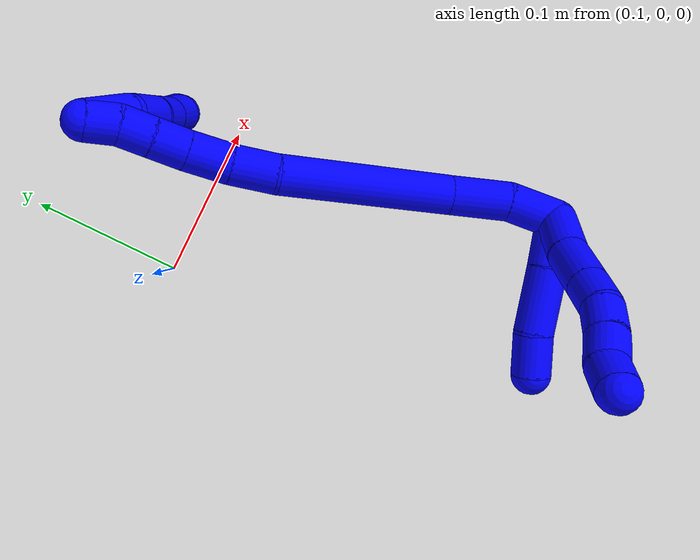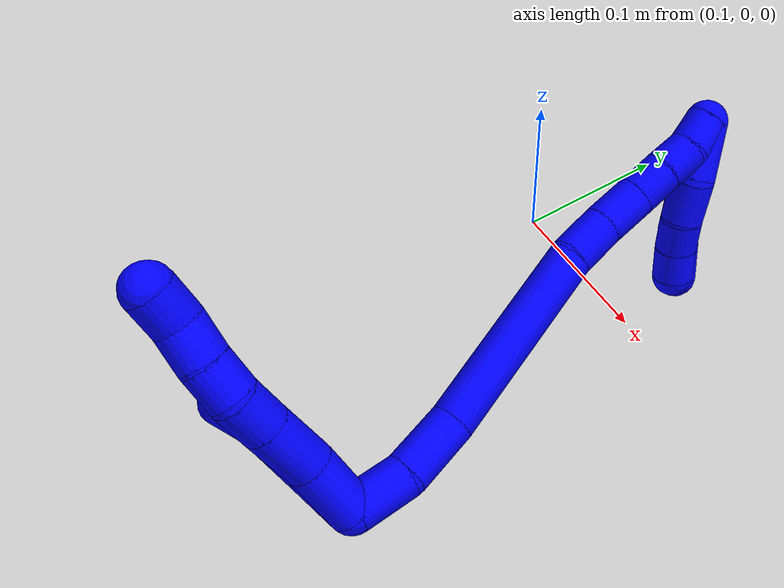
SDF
<sdf version="1.7">
 <world name="default">
  <model name="1">
   <static>0</static>
   <link name="1">
    <collision name="collision-cylinder-e_1_2_8">
     <pose>-0.012067 -0.006849 0.010627 0.572489 -0.762076 -0.234741</pose>
     <geometry><cylinder><radius>0.0125</radius><length>0.034955</length></cylinder></geometry>
     <surface>
      <friction><ode><mu>1.16</mu><mu2>1.16</mu2><slip1>0</slip1><slip2>0</slip2></ode></friction>
      <contact><ode><kp>1e+06</kp><kd>1</kd><max_vel>0</max_vel><min_depth>0.001</min_depth></ode></contact>
     </surface>
    </collision>
    <visual name="visual-cylinder-e_1_2_8">
     <pose>-0.012067 -0.006849 0.010627 0.572489 -0.762076 -0.234741</pose>
     <geometry><cylinder><radius>0.0125</radius><length>0.034955</length></cylinder></geometry>
     <material><ambient>0 0 1 1</ambient></material>
    </visual>
    <collision name="collision-cylinder-e_2_8_9">
     <pose>-0.033477 -0.021014 0.032367 0.582264 -0.612246 -0.188848</pose>
     <geometry><cylinder><radius>0.0125</radius><length>0.032513</length></cylinder></geometry>
     <surface>
      <friction><ode><mu>1.16</mu><mu2>1.16</mu2><slip1>0</slip1><slip2>0</slip2></ode></friction>
      <contact><ode><kp>1e+06</kp><kd>1</kd><max_vel>0</max_vel><min_depth>0.001</min_depth></ode></contact>
     </surface>
    </collision>
    <visual name="visual-cylinder-e_2_8_9">
     <pose>-0.033477 -0.021014 0.032367 0.582264 -0.612246 -0.188848</pose>
     <geometry><cylinder><radius>0.0125</radius><length>0.032513</length></cylinder></geometry>
     <material><ambient>0 0 1 1</ambient></material>
    </visual>
    <collision name="collision-cylinder-e_3_9_10">
     <pose>-0.049163 -0.03306 0.051085 0.556306 -0.616165 -0.181238</pose>
     <geometry><cylinder><radius>0.0125</radius><length>0.021951</length></cylinder></geometry>
     <surface>
      <friction><ode><mu>1.16</mu><mu2>1.16</mu2><slip1>0</slip1><slip2>0</slip2></ode></friction>
      <contact><ode><kp>1e+06</kp><kd>1</kd><max_vel>0</max_vel><min_depth>0.001</min_depth></ode></contact>
     </surface>
    </collision>
    <visual name="visual-cylinder-e_3_9_10">
     <pose>-0.049163 -0.03306 0.051085 0.556306 -0.616165 -0.181238</pose>
     <geometry><cylinder><radius>0.0125</radius><length>0.021951</length></cylinder></geometry>
     <material><ambient>0 0 1 1</ambient></material>
    </visual>
    <collision name="collision-cylinder-e_4_10_11">
     <pose>-0.063449 -0.041495 0.063756 0.631516 -0.902206 -0.313903</pose>
     <geometry><cylinder><radius>0.0125</radius><length>0.020245</length></cylinder></geometry>
     <surface>
      <friction><ode><mu>1.16</mu><mu2>1.16</mu2><slip1>0</slip1><slip2>0</slip2></ode></friction>
      <contact><ode><kp>1e+06</kp><kd>1</kd><max_vel>0</max_vel><min_depth>0.001</min_depth></ode></contact>
     </surface>
    </collision>
    <visual name="visual-cylinder-e_4_10_11">
     <pose>-0.063449 -0.041495 0.063756 0.631516 -0.902206 -0.313903</pose>
     <geometry><cylinder><radius>0.0125</radius><length>0.020245</length></cylinder></geometry>
     <material><ambient>0 0 1 1</ambient></material>
    </visual>
    <collision name="collision-cylinder-e_5_11_12">
     <pose>-0.080077 -0.047979 0.073311 0.554362 -1.02445 -0.317255</pose>
     <geometry><cylinder><radius>0.0125</radius><length>0.02033</length></cylinder></geometry>
     <surface>
      <friction><ode><mu>1.16</mu><mu2>1.16</mu2><slip1>0</slip1><slip2>0</slip2></ode></friction>
      <contact><ode><kp>1e+06</kp><kd>1</kd><max_vel>0</max_vel><min_depth>0.001</min_depth></ode></contact>
     </surface>
    </collision>
    <visual name="visual-cylinder-e_5_11_12">
     <pose>-0.080077 -0.047979 0.073311 0.554362 -1.02445 -0.317255</pose>
     <geometry><cylinder><radius>0.0125</radius><length>0.02033</length></cylinder></geometry>
     <material><ambient>0 0 1 1</ambient></material>
    </visual>
    <collision name="collision-cylinder-e_6_12_6">
     <pose>-0.095123 -0.054307 0.084657 0.477583 -0.68924 -0.174317</pose>
     <geometry><cylinder><radius>0.0125</radius><length>0.020005</length></cylinder></geometry>
     <surface>
      <friction><ode><mu>1.16</mu><mu2>1.16</mu2><slip1>0</slip1><slip2>0</slip2></ode></friction>
      <contact><ode><kp>1e+06</kp><kd>1</kd><max_vel>0</max_vel><min_depth>0.001</min_depth></ode></contact>
     </surface>
    </collision>
    <visual name="visual-cylinder-e_6_12_6">
     <pose>-0.095123 -0.054307 0.084657 0.477583 -0.68924 -0.174317</pose>
     <geometry><cylinder><radius>0.0125</radius><length>0.020005</length></cylinder></geometry>
     <material><ambient>0 0 1 1</ambient></material>
    </visual>
    <collision name="collision-cylinder-e_1_2_13">
     <pose>-0.013412 -0.006708 -0.003646 2.06865 -1.05326 -1.54827</pose>
     <geometry><cylinder><radius>0.0125</radius><length>0.030866</length></cylinder></geometry>
     <surface>
      <friction><ode><mu>1.16</mu><mu2>1.16</mu2><slip1>0</slip1><slip2>0</slip2></ode></friction>
      <contact><ode><kp>1e+06</kp><kd>1</kd><max_vel>0</max_vel><min_depth>0.001</min_depth></ode></contact>
     </surface>
    </collision>
    <visual name="visual-cylinder-e_1_2_13">
     <pose>-0.013412 -0.006708 -0.003646 2.06865 -1.05326 -1.54827</pose>
     <geometry><cylinder><radius>0.0125</radius><length>0.030866</length></cylinder></geometry>
     <material><ambient>0 0 1 1</ambient></material>
    </visual>
    <collision name="collision-cylinder-e_2_13_14">
     <pose>-0.044731 -0.022327 -0.014019 2.21746 -1.01335 -1.67891</pose>
     <geometry><cylinder><radius>0.0125</radius><length>0.042205</length></cylinder></geometry>
     <surface>
      <friction><ode><mu>1.16</mu><mu2>1.16</mu2><slip1>0</slip1><slip2>0</slip2></ode></friction>
      <contact><ode><kp>1e+06</kp><kd>1</kd><max_vel>0</max_vel><min_depth>0.001</min_depth></ode></contact>
     </surface>
    </collision>
    <visual name="visual-cylinder-e_2_13_14">
     <pose>-0.044731 -0.022327 -0.014019 2.21746 -1.01335 -1.67891</pose>
     <geometry><cylinder><radius>0.0125</radius><length>0.042205</length></cylinder></geometry>
     <material><ambient>0 0 1 1</ambient></material>
    </visual>
    <collision name="collision-cylinder-e_3_14_5">
     <pose>-0.072602 -0.038753 -0.025797 2.16255 -0.833028 -1.38598</pose>
     <geometry><cylinder><radius>0.0125</radius><length>0.02693</length></cylinder></geometry>
     <surface>
      <friction><ode><mu>1.16</mu><mu2>1.16</mu2><slip1>0</slip1><slip2>0</slip2></ode></friction>
      <contact><ode><kp>1e+06</kp><kd>1</kd><max_vel>0</max_vel><min_depth>0.001</min_depth></ode></contact>
     </surface>
    </collision>
    <visual name="visual-cylinder-e_3_14_5">
     <pose>-0.072602 -0.038753 -0.025797 2.16255 -0.833028 -1.38598</pose>
     <geometry><cylinder><radius>0.0125</radius><length>0.02693</length></cylinder></geometry>
     <material><ambient>0 0 1 1</ambient></material>
    </visual>
    <collision name="collision-cylinder-e_1_2_15">
     <pose>-0.00413 0.015208 -0.001024 -1.63801 -0.264618 0.282792</pose>
     <geometry><cylinder><radius>0.0125</radius><length>0.031584</length></cylinder></geometry>
     <surface>
      <friction><ode><mu>1.16</mu><mu2>1.16</mu2><slip1>0</slip1><slip2>0</slip2></ode></friction>
      <contact><ode><kp>1e+06</kp><kd>1</kd><max_vel>0</max_vel><min_depth>0.001</min_depth></ode></contact>
     </surface>
    </collision>
    <visual name="visual-cylinder-e_1_2_15">
     <pose>-0.00413 0.015208 -0.001024 -1.63801 -0.264618 0.282792</pose>
     <geometry><cylinder><radius>0.0125</radius><length>0.031584</length></cylinder></geometry>
     <material><ambient>0 0 1 1</ambient></material>
    </visual>
    <collision name="collision-cylinder-e_2_15_16">
     <pose>-0.017665 0.046784 -0.003788 -1.67671 -0.519076 0.574191</pose>
     <geometry><cylinder><radius>0.0125</radius><length>0.037915</length></cylinder></geometry>
     <surface>
      <friction><ode><mu>1.16</mu><mu2>1.16</mu2><slip1>0</slip1><slip2>0</slip2></ode></friction>
      <contact><ode><kp>1e+06</kp><kd>1</kd><max_vel>0</max_vel><min_depth>0.001</min_depth></ode></contact>
     </surface>
    </collision>
    <visual name="visual-cylinder-e_2_15_16">
     <pose>-0.017665 0.046784 -0.003788 -1.67671 -0.519076 0.574191</pose>
     <geometry><cylinder><radius>0.0125</radius><length>0.037915</length></cylinder></geometry>
     <material><ambient>0 0 1 1</ambient></material>
    </visual>
    <collision name="collision-cylinder-e_3_16_17">
     <pose>-0.05838 0.108894 0.003374 -1.37859 -0.591622 0.492143</pose>
     <geometry><cylinder><radius>0.0125</radius><length>0.112283</length></cylinder></geometry>
     <surface>
      <friction><ode><mu>1.16</mu><mu2>1.16</mu2><slip1>0</slip1><slip2>0</slip2></ode></friction>
      <contact><ode><kp>1e+06</kp><kd>1</kd><max_vel>0</max_vel><min_depth>0.001</min_depth></ode></contact>
     </surface>
    </collision>
    <visual name="visual-cylinder-e_3_16_17">
     <pose>-0.05838 0.108894 0.003374 -1.37859 -0.591622 0.492143</pose>
     <geometry><cylinder><radius>0.0125</radius><length>0.112283</length></cylinder></geometry>
     <material><ambient>0 0 1 1</ambient></material>
    </visual>
    <collision name="collision-cylinder-e_4_17_18">
     <pose>-0.095954 0.167148 0.012985 -1.51421 -0.463438 0.438762</pose>
     <geometry><cylinder><radius>0.0125</radius><length>0.028021</length></cylinder></geometry>
     <surface>
      <friction><ode><mu>1.16</mu><mu2>1.16</mu2><slip1>0</slip1><slip2>0</slip2></ode></friction>
      <contact><ode><kp>1e+06</kp><kd>1</kd><max_vel>0</max_vel><min_depth>0.001</min_depth></ode></contact>
     </surface>
    </collision>
    <visual name="visual-cylinder-e_4_17_18">
     <pose>-0.095954 0.167148 0.012985 -1.51421 -0.463438 0.438762</pose>
     <geometry><cylinder><radius>0.0125</radius><length>0.028021</length></cylinder></geometry>
     <material><ambient>0 0 1 1</ambient></material>
    </visual>
    <collision name="collision-cylinder-e_5_18_19">
     <pose>-0.10743 0.192203 0.015452 -1.43152 -0.3905 0.340624</pose>
     <geometry><cylinder><radius>0.0125</radius><length>0.027391</length></cylinder></geometry>
     <surface>
      <friction><ode><mu>1.16</mu><mu2>1.16</mu2><slip1>0</slip1><slip2>0</slip2></ode></friction>
      <contact><ode><kp>1e+06</kp><kd>1</kd><max_vel>0</max_vel><min_depth>0.001</min_depth></ode></contact>
     </surface>
    </collision>
    <visual name="visual-cylinder-e_5_18_19">
     <pose>-0.10743 0.192203 0.015452 -1.43152 -0.3905 0.340624</pose>
     <geometry><cylinder><radius>0.0125</radius><length>0.027391</length></cylinder></geometry>
     <material><ambient>0 0 1 1</ambient></material>
    </visual>
    <collision name="collision-cylinder-e_6_19_20">
     <pose>-0.116617 0.214586 0.02013 -1.28235 -0.36929 0.277018</pose>
     <geometry><cylinder><radius>0.0125</radius><length>0.022016</length></cylinder></geometry>
     <surface>
      <friction><ode><mu>1.16</mu><mu2>1.16</mu2><slip1>0</slip1><slip2>0</slip2></ode></friction>
      <contact><ode><kp>1e+06</kp><kd>1</kd><max_vel>0</max_vel><min_depth>0.001</min_depth></ode></contact>
     </surface>
    </collision>
    <visual name="visual-cylinder-e_6_19_20">
     <pose>-0.116617 0.214586 0.02013 -1.28235 -0.36929 0.277018</pose>
     <geometry><cylinder><radius>0.0125</radius><length>0.022016</length></cylinder></geometry>
     <material><ambient>0 0 1 1</ambient></material>
    </visual>
    <collision name="collision-cylinder-e_7_20_21">
     <pose>-0.124104 0.233652 0.025215 -1.34028 -0.355178 0.282574</pose>
     <geometry><cylinder><radius>0.0125</radius><length>0.020211</length></cylinder></geometry>
     <surface>
      <friction><ode><mu>1.16</mu><mu2>1.16</mu2><slip1>0</slip1><slip2>0</slip2></ode></friction>
      <contact><ode><kp>1e+06</kp><kd>1</kd><max_vel>0</max_vel><min_depth>0.001</min_depth></ode></contact>
     </surface>
    </collision>
    <visual name="visual-cylinder-e_7_20_21">
     <pose>-0.124104 0.233652 0.025215 -1.34028 -0.355178 0.282574</pose>
     <geometry><cylinder><radius>0.0125</radius><length>0.020211</length></cylinder></geometry>
     <material><ambient>0 0 1 1</ambient></material>
    </visual>
    <collision name="collision-cylinder-e_8_21_1">
     <pose>-0.133563 0.25095 0.029692 -1.29195 -0.616009 0.470768</pose>
     <geometry><cylinder><radius>0.0125</radius><length>0.020578</length></cylinder></geometry>
     <surface>
      <friction><ode><mu>1.16</mu><mu2>1.16</mu2><slip1>0</slip1><slip2>0</slip2></ode></friction>
      <contact><ode><kp>1e+06</kp><kd>1</kd><max_vel>0</max_vel><min_depth>0.001</min_depth></ode></contact>
     </surface>
    </collision>
    <visual name="visual-cylinder-e_8_21_1">
     <pose>-0.133563 0.25095 0.029692 -1.29195 -0.616009 0.470768</pose>
     <geometry><cylinder><radius>0.0125</radius><length>0.020578</length></cylinder></geometry>
     <material><ambient>0 0 1 1</ambient></material>
    </visual>
    <collision name="collision-cylinder-e_1_1_22">
     <pose>-0.12681 0.252319 0.022609 2.52177 0.833103 1.88858</pose>
     <geometry><cylinder><radius>0.0125</radius><length>0.034318</length></cylinder></geometry>
     <surface>
      <friction><ode><mu>1.16</mu><mu2>1.16</mu2><slip1>0</slip1><slip2>0</slip2></ode></friction>
      <contact><ode><kp>1e+06</kp><kd>1</kd><max_vel>0</max_vel><min_depth>0.001</min_depth></ode></contact>
     </surface>
    </collision>
    <visual name="visual-cylinder-e_1_1_22">
     <pose>-0.12681 0.252319 0.022609 2.52177 0.833103 1.88858</pose>
     <geometry><cylinder><radius>0.0125</radius><length>0.034318</length></cylinder></geometry>
     <material><ambient>0 0 1 1</ambient></material>
    </visual>
    <collision name="collision-cylinder-e_2_22_23">
     <pose>-0.106965 0.242149 0.0032 2.80839 0.593319 2.13573</pose>
     <geometry><cylinder><radius>0.0125</radius><length>0.025565</length></cylinder></geometry>
     <surface>
      <friction><ode><mu>1.16</mu><mu2>1.16</mu2><slip1>0</slip1><slip2>0</slip2></ode></friction>
      <contact><ode><kp>1e+06</kp><kd>1</kd><max_vel>0</max_vel><min_depth>0.001</min_depth></ode></contact>
     </surface>
    </collision>
    <visual name="visual-cylinder-e_2_22_23">
     <pose>-0.106965 0.242149 0.0032 2.80839 0.593319 2.13573</pose>
     <geometry><cylinder><radius>0.0125</radius><length>0.025565</length></cylinder></geometry>
     <material><ambient>0 0 1 1</ambient></material>
    </visual>
    <collision name="collision-cylinder-e_3_23_24">
     <pose>-0.094678 0.237516 -0.015355 3.00578 0.537715 2.65758</pose>
     <geometry><cylinder><radius>0.0125</radius><length>0.02007</length></cylinder></geometry>
     <surface>
      <friction><ode><mu>1.16</mu><mu2>1.16</mu2><slip1>0</slip1><slip2>0</slip2></ode></friction>
      <contact><ode><kp>1e+06</kp><kd>1</kd><max_vel>0</max_vel><min_depth>0.001</min_depth></ode></contact>
     </surface>
    </collision>
    <visual name="visual-cylinder-e_3_23_24">
     <pose>-0.094678 0.237516 -0.015355 3.00578 0.537715 2.65758</pose>
     <geometry><cylinder><radius>0.0125</radius><length>0.02007</length></cylinder></geometry>
     <material><ambient>0 0 1 1</ambient></material>
    </visual>
    <collision name="collision-cylinder-e_4_24_4">
     <pose>-0.083641 0.235598 -0.031964 3.04879 0.629055 2.85804</pose>
     <geometry><cylinder><radius>0.0125</radius><length>0.020047</length></cylinder></geometry>
     <surface>
      <friction><ode><mu>1.16</mu><mu2>1.16</mu2><slip1>0</slip1><slip2>0</slip2></ode></friction>
      <contact><ode><kp>1e+06</kp><kd>1</kd><max_vel>0</max_vel><min_depth>0.001</min_depth></ode></contact>
     </surface>
    </collision>
    <visual name="visual-cylinder-e_4_24_4">
     <pose>-0.083641 0.235598 -0.031964 3.04879 0.629055 2.85804</pose>
     <geometry><cylinder><radius>0.0125</radius><length>0.020047</length></cylinder></geometry>
     <material><ambient>0 0 1 1</ambient></material>
    </visual>
    <collision name="collision-cylinder-e_1_1_25">
     <pose>-0.125191 0.25284 0.013561 2.81807 0.634522 2.21914</pose>
     <geometry><cylinder><radius>0.0125</radius><length>0.048304</length></cylinder></geometry>
     <surface>
      <friction><ode><mu>1.16</mu><mu2>1.16</mu2><slip1>0</slip1><slip2>0</slip2></ode></friction>
      <contact><ode><kp>1e+06</kp><kd>1</kd><max_vel>0</max_vel><min_depth>0.001</min_depth></ode></contact>
     </surface>
    </collision>
    <visual name="visual-cylinder-e_1_1_25">
     <pose>-0.125191 0.25284 0.013561 2.81807 0.634522 2.21914</pose>
     <geometry><cylinder><radius>0.0125</radius><length>0.048304</length></cylinder></geometry>
     <material><ambient>0 0 1 1</ambient></material>
    </visual>
    <collision name="collision-cylinder-e_2_25_26">
     <pose>-0.10493 0.244182 -0.01258 2.83061 0.633796 2.24982</pose>
     <geometry><cylinder><radius>0.0125</radius><length>0.020074</length></cylinder></geometry>
     <surface>
      <friction><ode><mu>1.16</mu><mu2>1.16</mu2><slip1>0</slip1><slip2>0</slip2></ode></friction>
      <contact><ode><kp>1e+06</kp><kd>1</kd><max_vel>0</max_vel><min_depth>0.001</min_depth></ode></contact>
     </surface>
    </collision>
    <visual name="visual-cylinder-e_2_25_26">
     <pose>-0.10493 0.244182 -0.01258 2.83061 0.633796 2.24982</pose>
     <geometry><cylinder><radius>0.0125</radius><length>0.020074</length></cylinder></geometry>
     <material><ambient>0 0 1 1</ambient></material>
    </visual>
    <collision name="collision-cylinder-e_3_26_3">
     <pose>-0.088257 0.239746 -0.031727 2.97194 0.745801 2.71355</pose>
     <geometry><cylinder><radius>0.0125</radius><length>0.031622</length></cylinder></geometry>
     <surface>
      <friction><ode><mu>1.16</mu><mu2>1.16</mu2><slip1>0</slip1><slip2>0</slip2></ode></friction>
      <contact><ode><kp>1e+06</kp><kd>1</kd><max_vel>0</max_vel><min_depth>0.001</min_depth></ode></contact>
     </surface>
    </collision>
    <visual name="visual-cylinder-e_3_26_3">
     <pose>-0.088257 0.239746 -0.031727 2.97194 0.745801 2.71355</pose>
     <geometry><cylinder><radius>0.0125</radius><length>0.031622</length></cylinder></geometry>
     <material><ambient>0 0 1 1</ambient></material>
    </visual>
    <collision name="collision-sphere-3">
     <pose>-0.077528 0.237785 -0.043174 0 -0 0</pose>
     <geometry><sphere><radius>0.0125</radius></sphere></geometry>
     <surface>
      <friction><ode><mu>1.16</mu><mu2>1.16</mu2><slip1>0</slip1><slip2>0</slip2></ode></friction>
      <contact><ode><kp>1e+06</kp><kd>1</kd><max_vel>0</max_vel><min_depth>0.001</min_depth></ode></contact>
     </surface>
    </collision>
    <visual name="visual-sphere-3">
     <pose>-0.077528 0.237785 -0.043174 0 -0 0</pose>
     <geometry><sphere><radius>0.0125</radius></sphere></geometry>
     <material><ambient>0 0 1 1</ambient></material>
    </visual>
    <collision name="collision-sphere-26">
     <pose>-0.098986 0.241707 -0.02028 0 -0 0</pose>
     <geometry><sphere><radius>0.0125</radius></sphere></geometry>
     <surface>
      <friction><ode><mu>1.16</mu><mu2>1.16</mu2><slip1>0</slip1><slip2>0</slip2></ode></friction>
      <contact><ode><kp>1e+06</kp><kd>1</kd><max_vel>0</max_vel><min_depth>0.001</min_depth></ode></contact>
     </surface>
    </collision>
    <visual name="visual-sphere-26">
     <pose>-0.098986 0.241707 -0.02028 0 -0 0</pose>
     <geometry><sphere><radius>0.0125</radius></sphere></geometry>
     <material><ambient>0 0 1 1</ambient></material>
    </visual>
    <collision name="collision-sphere-25">
     <pose>-0.110874 0.246656 -0.00488 0 -0 0</pose>
     <geometry><sphere><radius>0.0125</radius></sphere></geometry>
     <surface>
      <friction><ode><mu>1.16</mu><mu2>1.16</mu2><slip1>0</slip1><slip2>0</slip2></ode></friction>
      <contact><ode><kp>1e+06</kp><kd>1</kd><max_vel>0</max_vel><min_depth>0.001</min_depth></ode></contact>
     </surface>
    </collision>
    <visual name="visual-sphere-25">
     <pose>-0.110874 0.246656 -0.00488 0 -0 0</pose>
     <geometry><sphere><radius>0.0125</radius></sphere></geometry>
     <material><ambient>0 0 1 1</ambient></material>
    </visual>
    <collision name="collision-sphere-4">
     <pose>-0.077744 0.234847 -0.040034 0 -0 0</pose>
     <geometry><sphere><radius>0.0125</radius></sphere></geometry>
     <surface>
      <friction><ode><mu>1.16</mu><mu2>1.16</mu2><slip1>0</slip1><slip2>0</slip2></ode></friction>
      <contact><ode><kp>1e+06</kp><kd>1</kd><max_vel>0</max_vel><min_depth>0.001</min_depth></ode></contact>
     </surface>
    </collision>
    <visual name="visual-sphere-4">
     <pose>-0.077744 0.234847 -0.040034 0 -0 0</pose>
     <geometry><sphere><radius>0.0125</radius></sphere></geometry>
     <material><ambient>0 0 1 1</ambient></material>
    </visual>
    <collision name="collision-sphere-24">
     <pose>-0.089539 0.236349 -0.023894 0 -0 0</pose>
     <geometry><sphere><radius>0.0125</radius></sphere></geometry>
     <surface>
      <friction><ode><mu>1.16</mu><mu2>1.16</mu2><slip1>0</slip1><slip2>0</slip2></ode></friction>
      <contact><ode><kp>1e+06</kp><kd>1</kd><max_vel>0</max_vel><min_depth>0.001</min_depth></ode></contact>
     </surface>
    </collision>
    <visual name="visual-sphere-24">
     <pose>-0.089539 0.236349 -0.023894 0 -0 0</pose>
     <geometry><sphere><radius>0.0125</radius></sphere></geometry>
     <material><ambient>0 0 1 1</ambient></material>
    </visual>
    <collision name="collision-sphere-23">
     <pose>-0.099818 0.238683 -0.006815 0 -0 0</pose>
     <geometry><sphere><radius>0.0125</radius></sphere></geometry>
     <surface>
      <friction><ode><mu>1.16</mu><mu2>1.16</mu2><slip1>0</slip1><slip2>0</slip2></ode></friction>
      <contact><ode><kp>1e+06</kp><kd>1</kd><max_vel>0</max_vel><min_depth>0.001</min_depth></ode></contact>
     </surface>
    </collision>
    <visual name="visual-sphere-23">
     <pose>-0.099818 0.238683 -0.006815 0 -0 0</pose>
     <geometry><sphere><radius>0.0125</radius></sphere></geometry>
     <material><ambient>0 0 1 1</ambient></material>
    </visual>
    <collision name="collision-sphere-22">
     <pose>-0.114112 0.245615 0.013215 0 -0 0</pose>
     <geometry><sphere><radius>0.0125</radius></sphere></geometry>
     <surface>
      <friction><ode><mu>1.16</mu><mu2>1.16</mu2><slip1>0</slip1><slip2>0</slip2></ode></friction>
      <contact><ode><kp>1e+06</kp><kd>1</kd><max_vel>0</max_vel><min_depth>0.001</min_depth></ode></contact>
     </surface>
    </collision>
    <visual name="visual-sphere-22">
     <pose>-0.114112 0.245615 0.013215 0 -0 0</pose>
     <geometry><sphere><radius>0.0125</radius></sphere></geometry>
     <material><ambient>0 0 1 1</ambient></material>
    </visual>
    <collision name="collision-sphere-1">
     <pose>-0.139508 0.259023 0.032003 0 -0 0</pose>
     <geometry><sphere><radius>0.0125</radius></sphere></geometry>
     <surface>
      <friction><ode><mu>1.16</mu><mu2>1.16</mu2><slip1>0</slip1><slip2>0</slip2></ode></friction>
      <contact><ode><kp>1e+06</kp><kd>1</kd><max_vel>0</max_vel><min_depth>0.001</min_depth></ode></contact>
     </surface>
    </collision>
    <visual name="visual-sphere-1">
     <pose>-0.139508 0.259023 0.032003 0 -0 0</pose>
     <geometry><sphere><radius>0.0125</radius></sphere></geometry>
     <material><ambient>0 0 1 1</ambient></material>
    </visual>
    <collision name="collision-sphere-21">
     <pose>-0.127618 0.242876 0.02738 0 -0 0</pose>
     <geometry><sphere><radius>0.0125</radius></sphere></geometry>
     <surface>
      <friction><ode><mu>1.16</mu><mu2>1.16</mu2><slip1>0</slip1><slip2>0</slip2></ode></friction>
      <contact><ode><kp>1e+06</kp><kd>1</kd><max_vel>0</max_vel><min_depth>0.001</min_depth></ode></contact>
     </surface>
    </collision>
    <visual name="visual-sphere-21">
     <pose>-0.127618 0.242876 0.02738 0 -0 0</pose>
     <geometry><sphere><radius>0.0125</radius></sphere></geometry>
     <material><ambient>0 0 1 1</ambient></material>
    </visual>
    <collision name="collision-sphere-12">
     <pose>-0.088762 -0.05076 0.077802 0 -0 0</pose>
     <geometry><sphere><radius>0.0125</radius></sphere></geometry>
     <surface>
      <friction><ode><mu>1.16</mu><mu2>1.16</mu2><slip1>0</slip1><slip2>0</slip2></ode></friction>
      <contact><ode><kp>1e+06</kp><kd>1</kd><max_vel>0</max_vel><min_depth>0.001</min_depth></ode></contact>
     </surface>
    </collision>
    <visual name="visual-sphere-12">
     <pose>-0.088762 -0.05076 0.077802 0 -0 0</pose>
     <geometry><sphere><radius>0.0125</radius></sphere></geometry>
     <material><ambient>0 0 1 1</ambient></material>
    </visual>
    <collision name="collision-sphere-11">
     <pose>-0.071392 -0.045199 0.06882 0 -0 0</pose>
     <geometry><sphere><radius>0.0125</radius></sphere></geometry>
     <surface>
      <friction><ode><mu>1.16</mu><mu2>1.16</mu2><slip1>0</slip1><slip2>0</slip2></ode></friction>
      <contact><ode><kp>1e+06</kp><kd>1</kd><max_vel>0</max_vel><min_depth>0.001</min_depth></ode></contact>
     </surface>
    </collision>
    <visual name="visual-sphere-11">
     <pose>-0.071392 -0.045199 0.06882 0 -0 0</pose>
     <geometry><sphere><radius>0.0125</radius></sphere></geometry>
     <material><ambient>0 0 1 1</ambient></material>
    </visual>
    <collision name="collision-sphere-10">
     <pose>-0.055505 -0.03779 0.058691 0 -0 0</pose>
     <geometry><sphere><radius>0.0125</radius></sphere></geometry>
     <surface>
      <friction><ode><mu>1.16</mu><mu2>1.16</mu2><slip1>0</slip1><slip2>0</slip2></ode></friction>
      <contact><ode><kp>1e+06</kp><kd>1</kd><max_vel>0</max_vel><min_depth>0.001</min_depth></ode></contact>
     </surface>
    </collision>
    <visual name="visual-sphere-10">
     <pose>-0.055505 -0.03779 0.058691 0 -0 0</pose>
     <geometry><sphere><radius>0.0125</radius></sphere></geometry>
     <material><ambient>0 0 1 1</ambient></material>
    </visual>
    <collision name="collision-sphere-9">
     <pose>-0.04282 -0.02833 0.043478 0 -0 0</pose>
     <geometry><sphere><radius>0.0125</radius></sphere></geometry>
     <surface>
      <friction><ode><mu>1.16</mu><mu2>1.16</mu2><slip1>0</slip1><slip2>0</slip2></ode></friction>
      <contact><ode><kp>1e+06</kp><kd>1</kd><max_vel>0</max_vel><min_depth>0.001</min_depth></ode></contact>
     </surface>
    </collision>
    <visual name="visual-sphere-9">
     <pose>-0.04282 -0.02833 0.043478 0 -0 0</pose>
     <geometry><sphere><radius>0.0125</radius></sphere></geometry>
     <material><ambient>0 0 1 1</ambient></material>
    </visual>
    <collision name="collision-sphere-2">
     <geometry><sphere><radius>0.0125</radius></sphere></geometry>
     <surface>
      <friction><ode><mu>1.16</mu><mu2>1.16</mu2><slip1>0</slip1><slip2>0</slip2></ode></friction>
      <contact><ode><kp>1e+06</kp><kd>1</kd><max_vel>0</max_vel><min_depth>0.001</min_depth></ode></contact>
     </surface>
    </collision>
    <visual name="visual-sphere-2">
     <geometry><sphere><radius>0.0125</radius></sphere></geometry>
     <material><ambient>0 0 1 1</ambient></material>
    </visual>
    <collision name="collision-sphere-19">
     <pose>-0.112643 0.204745 0.01721 0 -0 0</pose>
     <geometry><sphere><radius>0.0125</radius></sphere></geometry>
     <surface>
      <friction><ode><mu>1.16</mu><mu2>1.16</mu2><slip1>0</slip1><slip2>0</slip2></ode></friction>
      <contact><ode><kp>1e+06</kp><kd>1</kd><max_vel>0</max_vel><min_depth>0.001</min_depth></ode></contact>
     </surface>
    </collision>
    <visual name="visual-sphere-19">
     <pose>-0.112643 0.204745 0.01721 0 -0 0</pose>
     <geometry><sphere><radius>0.0125</radius></sphere></geometry>
     <material><ambient>0 0 1 1</ambient></material>
    </visual>
    <collision name="collision-sphere-8">
     <pose>-0.024134 -0.013699 0.021255 0 -0 0</pose>
     <geometry><sphere><radius>0.0125</radius></sphere></geometry>
     <surface>
      <friction><ode><mu>1.16</mu><mu2>1.16</mu2><slip1>0</slip1><slip2>0</slip2></ode></friction>
      <contact><ode><kp>1e+06</kp><kd>1</kd><max_vel>0</max_vel><min_depth>0.001</min_depth></ode></contact>
     </surface>
    </collision>
    <visual name="visual-sphere-8">
     <pose>-0.024134 -0.013699 0.021255 0 -0 0</pose>
     <geometry><sphere><radius>0.0125</radius></sphere></geometry>
     <material><ambient>0 0 1 1</ambient></material>
    </visual>
    <collision name="collision-sphere-6">
     <pose>-0.101484 -0.057855 0.091512 0 -0 0</pose>
     <geometry><sphere><radius>0.0125</radius></sphere></geometry>
     <surface>
      <friction><ode><mu>1.16</mu><mu2>1.16</mu2><slip1>0</slip1><slip2>0</slip2></ode></friction>
      <contact><ode><kp>1e+06</kp><kd>1</kd><max_vel>0</max_vel><min_depth>0.001</min_depth></ode></contact>
     </surface>
    </collision>
    <visual name="visual-sphere-6">
     <pose>-0.101484 -0.057855 0.091512 0 -0 0</pose>
     <geometry><sphere><radius>0.0125</radius></sphere></geometry>
     <material><ambient>0 0 1 1</ambient></material>
    </visual>
    <collision name="collision-sphere-13">
     <pose>-0.026823 -0.013417 -0.007292 0 -0 0</pose>
     <geometry><sphere><radius>0.0125</radius></sphere></geometry>
     <surface>
      <friction><ode><mu>1.16</mu><mu2>1.16</mu2><slip1>0</slip1><slip2>0</slip2></ode></friction>
      <contact><ode><kp>1e+06</kp><kd>1</kd><max_vel>0</max_vel><min_depth>0.001</min_depth></ode></contact>
     </surface>
    </collision>
    <visual name="visual-sphere-13">
     <pose>-0.026823 -0.013417 -0.007292 0 -0 0</pose>
     <geometry><sphere><radius>0.0125</radius></sphere></geometry>
     <material><ambient>0 0 1 1</ambient></material>
    </visual>
    <collision name="collision-sphere-14">
     <pose>-0.062639 -0.031236 -0.020745 0 -0 0</pose>
     <geometry><sphere><radius>0.0125</radius></sphere></geometry>
     <surface>
      <friction><ode><mu>1.16</mu><mu2>1.16</mu2><slip1>0</slip1><slip2>0</slip2></ode></friction>
      <contact><ode><kp>1e+06</kp><kd>1</kd><max_vel>0</max_vel><min_depth>0.001</min_depth></ode></contact>
     </surface>
    </collision>
    <visual name="visual-sphere-14">
     <pose>-0.062639 -0.031236 -0.020745 0 -0 0</pose>
     <geometry><sphere><radius>0.0125</radius></sphere></geometry>
     <material><ambient>0 0 1 1</ambient></material>
    </visual>
    <collision name="collision-sphere-5">
     <pose>-0.082566 -0.04627 -0.030849 0 -0 0</pose>
     <geometry><sphere><radius>0.0125</radius></sphere></geometry>
     <surface>
      <friction><ode><mu>1.16</mu><mu2>1.16</mu2><slip1>0</slip1><slip2>0</slip2></ode></friction>
      <contact><ode><kp>1e+06</kp><kd>1</kd><max_vel>0</max_vel><min_depth>0.001</min_depth></ode></contact>
     </surface>
    </collision>
    <visual name="visual-sphere-5">
     <pose>-0.082566 -0.04627 -0.030849 0 -0 0</pose>
     <geometry><sphere><radius>0.0125</radius></sphere></geometry>
     <material><ambient>0 0 1 1</ambient></material>
    </visual>
    <collision name="collision-sphere-15">
     <pose>-0.008261 0.030416 -0.002047 0 -0 0</pose>
     <geometry><sphere><radius>0.0125</radius></sphere></geometry>
     <surface>
      <friction><ode><mu>1.16</mu><mu2>1.16</mu2><slip1>0</slip1><slip2>0</slip2></ode></friction>
      <contact><ode><kp>1e+06</kp><kd>1</kd><max_vel>0</max_vel><min_depth>0.001</min_depth></ode></contact>
     </surface>
    </collision>
    <visual name="visual-sphere-15">
     <pose>-0.008261 0.030416 -0.002047 0 -0 0</pose>
     <geometry><sphere><radius>0.0125</radius></sphere></geometry>
     <material><ambient>0 0 1 1</ambient></material>
    </visual>
    <collision name="collision-sphere-16">
     <pose>-0.027069 0.063152 -0.005528 0 -0 0</pose>
     <geometry><sphere><radius>0.0125</radius></sphere></geometry>
     <surface>
      <friction><ode><mu>1.16</mu><mu2>1.16</mu2><slip1>0</slip1><slip2>0</slip2></ode></friction>
      <contact><ode><kp>1e+06</kp><kd>1</kd><max_vel>0</max_vel><min_depth>0.001</min_depth></ode></contact>
     </surface>
    </collision>
    <visual name="visual-sphere-16">
     <pose>-0.027069 0.063152 -0.005528 0 -0 0</pose>
     <geometry><sphere><radius>0.0125</radius></sphere></geometry>
     <material><ambient>0 0 1 1</ambient></material>
    </visual>
    <collision name="collision-sphere-17">
     <pose>-0.08969 0.154635 0.012276 0 -0 0</pose>
     <geometry><sphere><radius>0.0125</radius></sphere></geometry>
     <surface>
      <friction><ode><mu>1.16</mu><mu2>1.16</mu2><slip1>0</slip1><slip2>0</slip2></ode></friction>
      <contact><ode><kp>1e+06</kp><kd>1</kd><max_vel>0</max_vel><min_depth>0.001</min_depth></ode></contact>
     </surface>
    </collision>
    <visual name="visual-sphere-17">
     <pose>-0.08969 0.154635 0.012276 0 -0 0</pose>
     <geometry><sphere><radius>0.0125</radius></sphere></geometry>
     <material><ambient>0 0 1 1</ambient></material>
    </visual>
    <collision name="collision-sphere-18">
     <pose>-0.102217 0.179661 0.013694 0 -0 0</pose>
     <geometry><sphere><radius>0.0125</radius></sphere></geometry>
     <surface>
      <friction><ode><mu>1.16</mu><mu2>1.16</mu2><slip1>0</slip1><slip2>0</slip2></ode></friction>
      <contact><ode><kp>1e+06</kp><kd>1</kd><max_vel>0</max_vel><min_depth>0.001</min_depth></ode></contact>
     </surface>
    </collision>
    <visual name="visual-sphere-18">
     <pose>-0.102217 0.179661 0.013694 0 -0 0</pose>
     <geometry><sphere><radius>0.0125</radius></sphere></geometry>
     <material><ambient>0 0 1 1</ambient></material>
    </visual>
    <collision name="collision-sphere-20">
     <pose>-0.12059 0.224428 0.023051 0 -0 0</pose>
     <geometry><sphere><radius>0.0125</radius></sphere></geometry>
     <surface>
      <friction><ode><mu>1.16</mu><mu2>1.16</mu2><slip1>0</slip1><slip2>0</slip2></ode></friction>
      <contact><ode><kp>1e+06</kp><kd>1</kd><max_vel>0</max_vel><min_depth>0.001</min_depth></ode></contact>
     </surface>
    </collision>
    <visual name="visual-sphere-20">
     <pose>-0.12059 0.224428 0.023051 0 -0 0</pose>
     <geometry><sphere><radius>0.0125</radius></sphere></geometry>
     <material><ambient>0 0 1 1</ambient></material>
    </visual>
    <inertial>
     <pose>-0.072107 0.108444 0.009977 0 -0 0</pose>
     <mass>0.75</mass>
     <inertia>
      <ixx>0.000148</ixx>
      <ixy>0</ixy>
      <ixz>0</ixz>
      <iyy>0.000169</iyy>
      <iyz>0</iyz>
      <izz>-2.1e-05</izz>
     </inertia>
    </inertial>
   </link>
   <pose>0.236005 -0.206757 0.043789 -0.048619 0.280191 -0.199784</pose>
  </model>
 </world>
</sdf>
